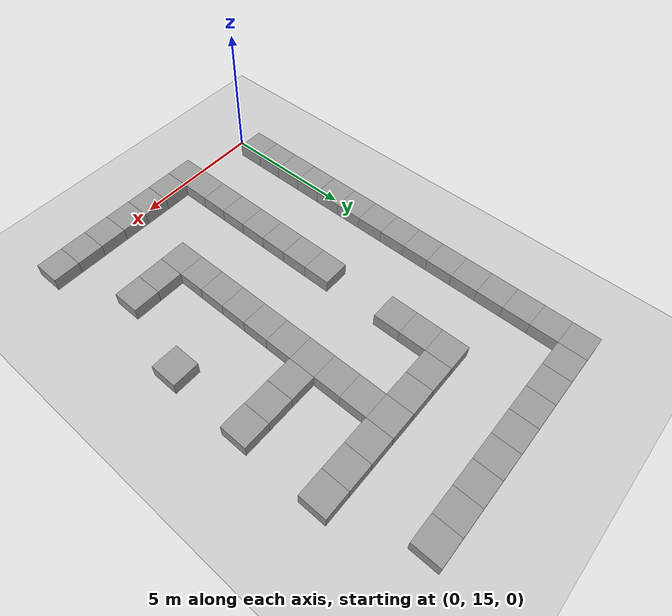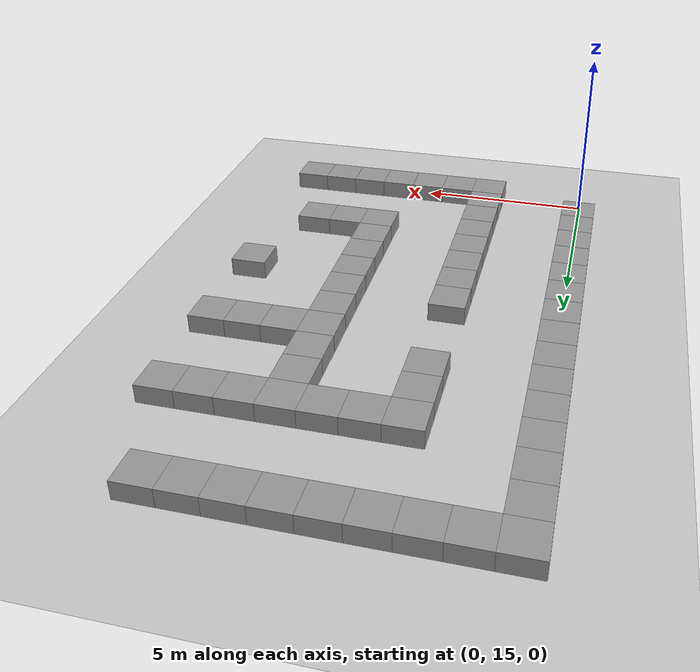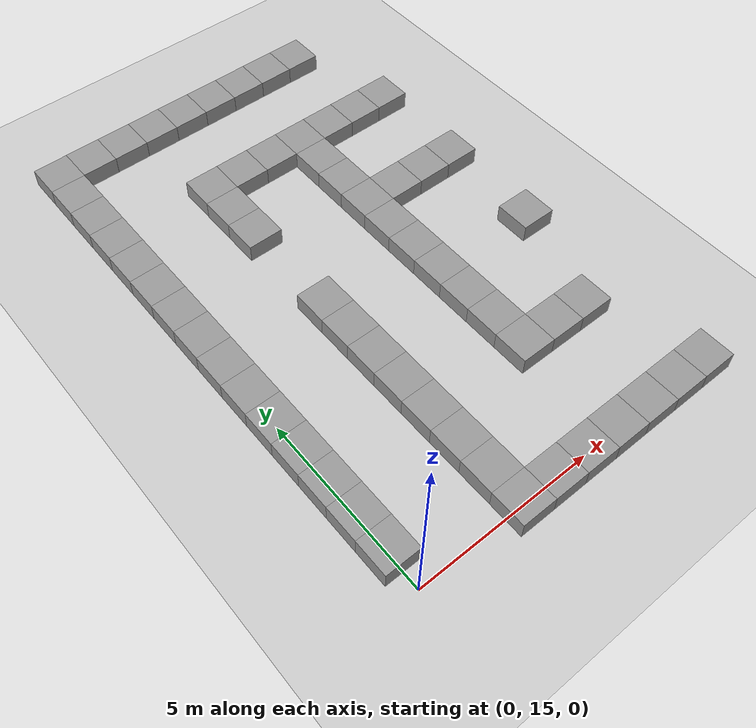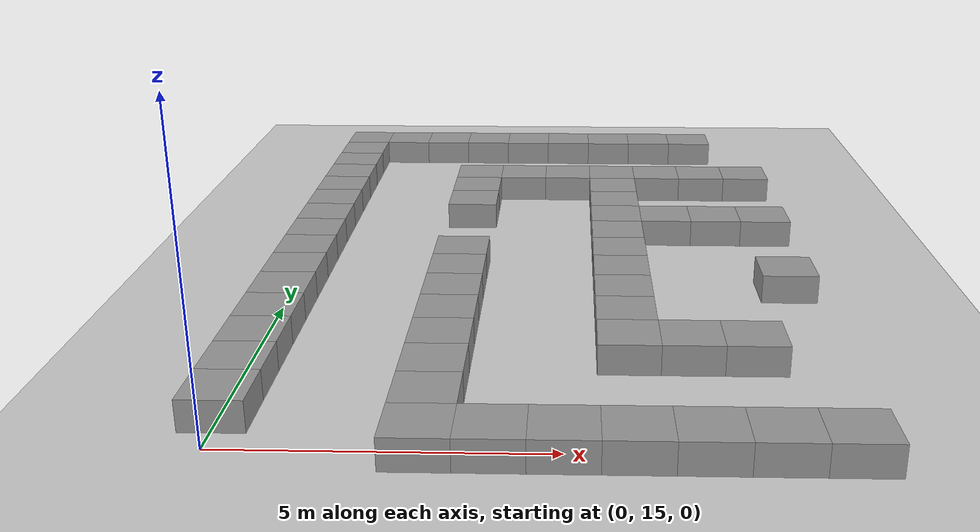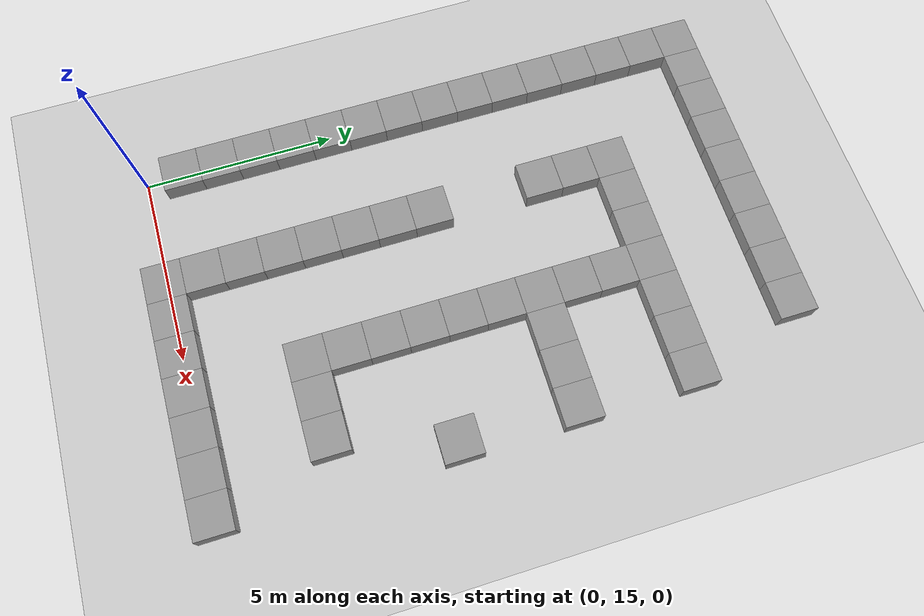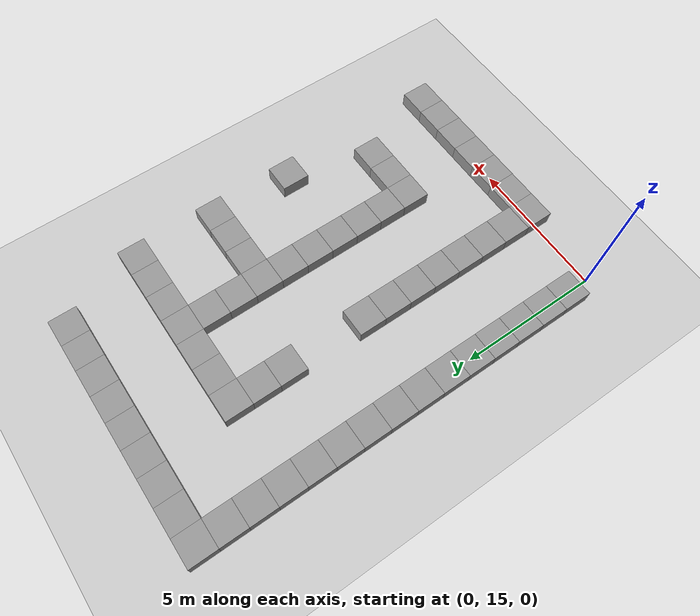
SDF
<sdf version="1.4">
 <world name="default">
  <model name="ground_plane">
   <static>1</static>
   <link name="link">
    <collision name="collision">
     <geometry><plane><normal>0 0 1</normal><size>100 100</size></plane></geometry>
     <surface><friction><ode><mu>100</mu><mu2>50</mu2></ode></friction></surface>
    </collision>
    <visual name="visual">
     <cast_shadows>0</cast_shadows>
     <geometry><plane><normal>0 0 1</normal><size>100 100</size></plane></geometry>
     <material>
      <script><uri>file://media/materials/scripts/gazebo.material</uri><name>Gazebo/Grey</name></script>
     </material>
    </visual>
    <velocity_decay><linear>0</linear><angular>0</angular></velocity_decay>
   </link>
  </model>
  <model name="unit_box_60">
   <pose>1 30 0 0 -0 0</pose>
   <link name="link">
    <inertial>
     <mass>1</mass>
     <inertia><ixx>1</ixx><ixy>0</ixy><ixz>0</ixz><iyy>1</iyy><iyz>0</iyz><izz>1</izz></inertia>
    </inertial>
    <collision name="collision"><geometry><box><size>1 1 1</size></box></geometry></collision>
    <visual name="visual">
     <geometry><box><size>1 1 1</size></box></geometry>
     <material>
      <script><uri>file://media/materials/scripts/gazebo.material</uri><name>Gazebo/Grey</name></script>
     </material>
    </visual>
    <velocity_decay><linear>0</linear><angular>0</angular></velocity_decay>
   </link>
   <static>1</static>
  </model>
  <model name="unit_box_61">
   <pose>2 30 0 0 -0 0</pose>
   <link name="link">
    <inertial>
     <mass>1</mass>
     <inertia><ixx>1</ixx><ixy>0</ixy><ixz>0</ixz><iyy>1</iyy><iyz>0</iyz><izz>1</izz></inertia>
    </inertial>
    <collision name="collision"><geometry><box><size>1 1 1</size></box></geometry></collision>
    <visual name="visual">
     <geometry><box><size>1 1 1</size></box></geometry>
     <material>
      <script><uri>file://media/materials/scripts/gazebo.material</uri><name>Gazebo/Grey</name></script>
     </material>
    </visual>
    <velocity_decay><linear>0</linear><angular>0</angular></velocity_decay>
   </link>
   <static>1</static>
  </model>
  <model name="unit_box_62">
   <pose>3 30 0 0 -0 0</pose>
   <link name="link">
    <inertial>
     <mass>1</mass>
     <inertia><ixx>1</ixx><ixy>0</ixy><ixz>0</ixz><iyy>1</iyy><iyz>0</iyz><izz>1</izz></inertia>
    </inertial>
    <collision name="collision"><geometry><box><size>1 1 1</size></box></geometry></collision>
    <visual name="visual">
     <geometry><box><size>1 1 1</size></box></geometry>
     <material>
      <script><uri>file://media/materials/scripts/gazebo.material</uri><name>Gazebo/Grey</name></script>
     </material>
    </visual>
    <velocity_decay><linear>0</linear><angular>0</angular></velocity_decay>
   </link>
   <static>1</static>
  </model>
  <model name="unit_box_63">
   <pose>4 30 0 0 -0 0</pose>
   <link name="link">
    <inertial>
     <mass>1</mass>
     <inertia><ixx>1</ixx><ixy>0</ixy><ixz>0</ixz><iyy>1</iyy><iyz>0</iyz><izz>1</izz></inertia>
    </inertial>
    <collision name="collision"><geometry><box><size>1 1 1</size></box></geometry></collision>
    <visual name="visual">
     <geometry><box><size>1 1 1</size></box></geometry>
     <material>
      <script><uri>file://media/materials/scripts/gazebo.material</uri><name>Gazebo/Grey</name></script>
     </material>
    </visual>
    <velocity_decay><linear>0</linear><angular>0</angular></velocity_decay>
   </link>
   <static>1</static>
  </model>
  <model name="unit_box_64">
   <pose>5 30 0 0 -0 0</pose>
   <link name="link">
    <inertial>
     <mass>1</mass>
     <inertia><ixx>1</ixx><ixy>0</ixy><ixz>0</ixz><iyy>1</iyy><iyz>0</iyz><izz>1</izz></inertia>
    </inertial>
    <collision name="collision"><geometry><box><size>1 1 1</size></box></geometry></collision>
    <visual name="visual">
     <geometry><box><size>1 1 1</size></box></geometry>
     <material>
      <script><uri>file://media/materials/scripts/gazebo.material</uri><name>Gazebo/Grey</name></script>
     </material>
    </visual>
    <velocity_decay><linear>0</linear><angular>0</angular></velocity_decay>
   </link>
   <static>1</static>
  </model>
  <model name="unit_box_65">
   <pose>6 30 0 0 -0 0</pose>
   <link name="link">
    <inertial>
     <mass>1</mass>
     <inertia><ixx>1</ixx><ixy>0</ixy><ixz>0</ixz><iyy>1</iyy><iyz>0</iyz><izz>1</izz></inertia>
    </inertial>
    <collision name="collision"><geometry><box><size>1 1 1</size></box></geometry></collision>
    <visual name="visual">
     <geometry><box><size>1 1 1</size></box></geometry>
     <material>
      <script><uri>file://media/materials/scripts/gazebo.material</uri><name>Gazebo/Grey</name></script>
     </material>
    </visual>
    <velocity_decay><linear>0</linear><angular>0</angular></velocity_decay>
   </link>
   <static>1</static>
  </model>
  <model name="unit_box_66">
   <pose>7 30 0 0 -0 0</pose>
   <link name="link">
    <inertial>
     <mass>1</mass>
     <inertia><ixx>1</ixx><ixy>0</ixy><ixz>0</ixz><iyy>1</iyy><iyz>0</iyz><izz>1</izz></inertia>
    </inertial>
    <collision name="collision"><geometry><box><size>1 1 1</size></box></geometry></collision>
    <visual name="visual">
     <geometry><box><size>1 1 1</size></box></geometry>
     <material>
      <script><uri>file://media/materials/scripts/gazebo.material</uri><name>Gazebo/Grey</name></script>
     </material>
    </visual>
    <velocity_decay><linear>0</linear><angular>0</angular></velocity_decay>
   </link>
   <static>1</static>
  </model>
  <model name="unit_box_67">
   <pose>8 30 0 0 -0 0</pose>
   <link name="link">
    <inertial>
     <mass>1</mass>
     <inertia><ixx>1</ixx><ixy>0</ixy><ixz>0</ixz><iyy>1</iyy><iyz>0</iyz><izz>1</izz></inertia>
    </inertial>
    <collision name="collision"><geometry><box><size>1 1 1</size></box></geometry></collision>
    <visual name="visual">
     <geometry><box><size>1 1 1</size></box></geometry>
     <material>
      <script><uri>file://media/materials/scripts/gazebo.material</uri><name>Gazebo/Grey</name></script>
     </material>
    </visual>
    <velocity_decay><linear>0</linear><angular>0</angular></velocity_decay>
   </link>
   <static>1</static>
  </model>
  <model name="unit_box_88">
   <pose>0 30 0 0 -0 0</pose>
   <link name="link">
    <inertial>
     <mass>1</mass>
     <inertia><ixx>1</ixx><ixy>0</ixy><ixz>0</ixz><iyy>1</iyy><iyz>0</iyz><izz>1</izz></inertia>
    </inertial>
    <collision name="collision"><geometry><box><size>1 1 1</size></box></geometry></collision>
    <visual name="visual">
     <geometry><box><size>1 1 1</size></box></geometry>
     <material>
      <script><uri>file://media/materials/scripts/gazebo.material</uri><name>Gazebo/Grey</name></script>
     </material>
    </visual>
    <velocity_decay><linear>0</linear><angular>0</angular></velocity_decay>
   </link>
   <static>1</static>
  </model>
  <model name="unit_box_89">
   <pose>0 29 0 0 -0 0</pose>
   <link name="link">
    <inertial>
     <mass>1</mass>
     <inertia><ixx>1</ixx><ixy>0</ixy><ixz>0</ixz><iyy>1</iyy><iyz>0</iyz><izz>1</izz></inertia>
    </inertial>
    <collision name="collision"><geometry><box><size>1 1 1</size></box></geometry></collision>
    <visual name="visual">
     <geometry><box><size>1 1 1</size></box></geometry>
     <material>
      <script><uri>file://media/materials/scripts/gazebo.material</uri><name>Gazebo/Grey</name></script>
     </material>
    </visual>
    <velocity_decay><linear>0</linear><angular>0</angular></velocity_decay>
   </link>
   <static>1</static>
  </model>
  <model name="unit_box_90">
   <pose>0 28 0 0 -0 0</pose>
   <link name="link">
    <inertial>
     <mass>1</mass>
     <inertia><ixx>1</ixx><ixy>0</ixy><ixz>0</ixz><iyy>1</iyy><iyz>0</iyz><izz>1</izz></inertia>
    </inertial>
    <collision name="collision"><geometry><box><size>1 1 1</size></box></geometry></collision>
    <visual name="visual">
     <geometry><box><size>1 1 1</size></box></geometry>
     <material>
      <script><uri>file://media/materials/scripts/gazebo.material</uri><name>Gazebo/Grey</name></script>
     </material>
    </visual>
    <velocity_decay><linear>0</linear><angular>0</angular></velocity_decay>
   </link>
   <static>1</static>
  </model>
  <model name="unit_box_91">
   <pose>0 27 0 0 -0 0</pose>
   <link name="link">
    <inertial>
     <mass>1</mass>
     <inertia><ixx>1</ixx><ixy>0</ixy><ixz>0</ixz><iyy>1</iyy><iyz>0</iyz><izz>1</izz></inertia>
    </inertial>
    <collision name="collision"><geometry><box><size>1 1 1</size></box></geometry></collision>
    <visual name="visual">
     <geometry><box><size>1 1 1</size></box></geometry>
     <material>
      <script><uri>file://media/materials/scripts/gazebo.material</uri><name>Gazebo/Grey</name></script>
     </material>
    </visual>
    <velocity_decay><linear>0</linear><angular>0</angular></velocity_decay>
   </link>
   <static>1</static>
  </model>
  <model name="unit_box_92">
   <pose>0 26 0 0 -0 0</pose>
   <link name="link">
    <inertial>
     <mass>1</mass>
     <inertia><ixx>1</ixx><ixy>0</ixy><ixz>0</ixz><iyy>1</iyy><iyz>0</iyz><izz>1</izz></inertia>
    </inertial>
    <collision name="collision"><geometry><box><size>1 1 1</size></box></geometry></collision>
    <visual name="visual">
     <geometry><box><size>1 1 1</size></box></geometry>
     <material>
      <script><uri>file://media/materials/scripts/gazebo.material</uri><name>Gazebo/Grey</name></script>
     </material>
    </visual>
    <velocity_decay><linear>0</linear><angular>0</angular></velocity_decay>
   </link>
   <static>1</static>
  </model>
  <model name="unit_box_93">
   <pose>0 25 0 0 -0 0</pose>
   <link name="link">
    <inertial>
     <mass>1</mass>
     <inertia><ixx>1</ixx><ixy>0</ixy><ixz>0</ixz><iyy>1</iyy><iyz>0</iyz><izz>1</izz></inertia>
    </inertial>
    <collision name="collision"><geometry><box><size>1 1 1</size></box></geometry></collision>
    <visual name="visual">
     <geometry><box><size>1 1 1</size></box></geometry>
     <material>
      <script><uri>file://media/materials/scripts/gazebo.material</uri><name>Gazebo/Grey</name></script>
     </material>
    </visual>
    <velocity_decay><linear>0</linear><angular>0</angular></velocity_decay>
   </link>
   <static>1</static>
  </model>
  <model name="unit_box_94">
   <pose>0 24 0 0 -0 0</pose>
   <link name="link">
    <inertial>
     <mass>1</mass>
     <inertia><ixx>1</ixx><ixy>0</ixy><ixz>0</ixz><iyy>1</iyy><iyz>0</iyz><izz>1</izz></inertia>
    </inertial>
    <collision name="collision"><geometry><box><size>1 1 1</size></box></geometry></collision>
    <visual name="visual">
     <geometry><box><size>1 1 1</size></box></geometry>
     <material>
      <script><uri>file://media/materials/scripts/gazebo.material</uri><name>Gazebo/Grey</name></script>
     </material>
    </visual>
    <velocity_decay><linear>0</linear><angular>0</angular></velocity_decay>
   </link>
   <static>1</static>
  </model>
  <model name="unit_box_95">
   <pose>0 23 0 0 -0 0</pose>
   <link name="link">
    <inertial>
     <mass>1</mass>
     <inertia><ixx>1</ixx><ixy>0</ixy><ixz>0</ixz><iyy>1</iyy><iyz>0</iyz><izz>1</izz></inertia>
    </inertial>
    <collision name="collision"><geometry><box><size>1 1 1</size></box></geometry></collision>
    <visual name="visual">
     <geometry><box><size>1 1 1</size></box></geometry>
     <material>
      <script><uri>file://media/materials/scripts/gazebo.material</uri><name>Gazebo/Grey</name></script>
     </material>
    </visual>
    <velocity_decay><linear>0</linear><angular>0</angular></velocity_decay>
   </link>
   <static>1</static>
  </model>
  <model name="unit_box_96">
   <pose>0 22 0 0 -0 0</pose>
   <link name="link">
    <inertial>
     <mass>1</mass>
     <inertia><ixx>1</ixx><ixy>0</ixy><ixz>0</ixz><iyy>1</iyy><iyz>0</iyz><izz>1</izz></inertia>
    </inertial>
    <collision name="collision"><geometry><box><size>1 1 1</size></box></geometry></collision>
    <visual name="visual">
     <geometry><box><size>1 1 1</size></box></geometry>
     <material>
      <script><uri>file://media/materials/scripts/gazebo.material</uri><name>Gazebo/Grey</name></script>
     </material>
    </visual>
    <velocity_decay><linear>0</linear><angular>0</angular></velocity_decay>
   </link>
   <static>1</static>
  </model>
  <model name="unit_box_97">
   <pose>0 21 0 0 -0 0</pose>
   <link name="link">
    <inertial>
     <mass>1</mass>
     <inertia><ixx>1</ixx><ixy>0</ixy><ixz>0</ixz><iyy>1</iyy><iyz>0</iyz><izz>1</izz></inertia>
    </inertial>
    <collision name="collision"><geometry><box><size>1 1 1</size></box></geometry></collision>
    <visual name="visual">
     <geometry><box><size>1 1 1</size></box></geometry>
     <material>
      <script><uri>file://media/materials/scripts/gazebo.material</uri><name>Gazebo/Grey</name></script>
     </material>
    </visual>
    <velocity_decay><linear>0</linear><angular>0</angular></velocity_decay>
   </link>
   <static>1</static>
  </model>
  <model name="unit_box_98">
   <pose>0 20 0 0 -0 0</pose>
   <link name="link">
    <inertial>
     <mass>1</mass>
     <inertia><ixx>1</ixx><ixy>0</ixy><ixz>0</ixz><iyy>1</iyy><iyz>0</iyz><izz>1</izz></inertia>
    </inertial>
    <collision name="collision"><geometry><box><size>1 1 1</size></box></geometry></collision>
    <visual name="visual">
     <geometry><box><size>1 1 1</size></box></geometry>
     <material>
      <script><uri>file://media/materials/scripts/gazebo.material</uri><name>Gazebo/Grey</name></script>
     </material>
    </visual>
    <velocity_decay><linear>0</linear><angular>0</angular></velocity_decay>
   </link>
   <static>1</static>
  </model>
  <model name="unit_box_99">
   <pose>0 19 0 0 -0 0</pose>
   <link name="link">
    <inertial>
     <mass>1</mass>
     <inertia><ixx>1</ixx><ixy>0</ixy><ixz>0</ixz><iyy>1</iyy><iyz>0</iyz><izz>1</izz></inertia>
    </inertial>
    <collision name="collision"><geometry><box><size>1 1 1</size></box></geometry></collision>
    <visual name="visual">
     <geometry><box><size>1 1 1</size></box></geometry>
     <material>
      <script><uri>file://media/materials/scripts/gazebo.material</uri><name>Gazebo/Grey</name></script>
     </material>
    </visual>
    <velocity_decay><linear>0</linear><angular>0</angular></velocity_decay>
   </link>
   <static>1</static>
  </model>
  <model name="unit_box_100">
   <pose>0 18 0 0 -0 0</pose>
   <link name="link">
    <inertial>
     <mass>1</mass>
     <inertia><ixx>1</ixx><ixy>0</ixy><ixz>0</ixz><iyy>1</iyy><iyz>0</iyz><izz>1</izz></inertia>
    </inertial>
    <collision name="collision"><geometry><box><size>1 1 1</size></box></geometry></collision>
    <visual name="visual">
     <geometry><box><size>1 1 1</size></box></geometry>
     <material>
      <script><uri>file://media/materials/scripts/gazebo.material</uri><name>Gazebo/Grey</name></script>
     </material>
    </visual>
    <velocity_decay><linear>0</linear><angular>0</angular></velocity_decay>
   </link>
   <static>1</static>
  </model>
  <model name="unit_box_101">
   <pose>0 17 0 0 -0 0</pose>
   <link name="link">
    <inertial>
     <mass>1</mass>
     <inertia><ixx>1</ixx><ixy>0</ixy><ixz>0</ixz><iyy>1</iyy><iyz>0</iyz><izz>1</izz></inertia>
    </inertial>
    <collision name="collision"><geometry><box><size>1 1 1</size></box></geometry></collision>
    <visual name="visual">
     <geometry><box><size>1 1 1</size></box></geometry>
     <material>
      <script><uri>file://media/materials/scripts/gazebo.material</uri><name>Gazebo/Grey</name></script>
     </material>
    </visual>
    <velocity_decay><linear>0</linear><angular>0</angular></velocity_decay>
   </link>
   <static>1</static>
  </model>
  <model name="unit_box_102">
   <pose>0 16 0 0 -0 0</pose>
   <link name="link">
    <inertial>
     <mass>1</mass>
     <inertia><ixx>1</ixx><ixy>0</ixy><ixz>0</ixz><iyy>1</iyy><iyz>0</iyz><izz>1</izz></inertia>
    </inertial>
    <collision name="collision"><geometry><box><size>1 1 1</size></box></geometry></collision>
    <visual name="visual">
     <geometry><box><size>1 1 1</size></box></geometry>
     <material>
      <script><uri>file://media/materials/scripts/gazebo.material</uri><name>Gazebo/Grey</name></script>
     </material>
    </visual>
    <velocity_decay><linear>0</linear><angular>0</angular></velocity_decay>
   </link>
   <static>1</static>
  </model>
  <model name="unit_box_242">
   <pose>3 15 0 0 -0 0</pose>
   <link name="link">
    <inertial>
     <mass>1</mass>
     <inertia><ixx>1</ixx><ixy>0</ixy><ixz>0</ixz><iyy>1</iyy><iyz>0</iyz><izz>1</izz></inertia>
    </inertial>
    <collision name="collision"><geometry><box><size>1 1 1</size></box></geometry></collision>
    <visual name="visual">
     <geometry><box><size>1 1 1</size></box></geometry>
     <material>
      <script><uri>file://media/materials/scripts/gazebo.material</uri><name>Gazebo/Grey</name></script>
     </material>
    </visual>
    <velocity_decay><linear>0</linear><angular>0</angular></velocity_decay>
   </link>
   <static>1</static>
  </model>
  <model name="unit_box_243">
   <pose>4 15 0 0 -0 0</pose>
   <link name="link">
    <inertial>
     <mass>1</mass>
     <inertia><ixx>1</ixx><ixy>0</ixy><ixz>0</ixz><iyy>1</iyy><iyz>0</iyz><izz>1</izz></inertia>
    </inertial>
    <collision name="collision"><geometry><box><size>1 1 1</size></box></geometry></collision>
    <visual name="visual">
     <geometry><box><size>1 1 1</size></box></geometry>
     <material>
      <script><uri>file://media/materials/scripts/gazebo.material</uri><name>Gazebo/Grey</name></script>
     </material>
    </visual>
    <velocity_decay><linear>0</linear><angular>0</angular></velocity_decay>
   </link>
   <static>1</static>
  </model>
  <model name="unit_box_244">
   <pose>5 15 0 0 -0 0</pose>
   <link name="link">
    <inertial>
     <mass>1</mass>
     <inertia><ixx>1</ixx><ixy>0</ixy><ixz>0</ixz><iyy>1</iyy><iyz>0</iyz><izz>1</izz></inertia>
    </inertial>
    <collision name="collision"><geometry><box><size>1 1 1</size></box></geometry></collision>
    <visual name="visual">
     <geometry><box><size>1 1 1</size></box></geometry>
     <material>
      <script><uri>file://media/materials/scripts/gazebo.material</uri><name>Gazebo/Grey</name></script>
     </material>
    </visual>
    <velocity_decay><linear>0</linear><angular>0</angular></velocity_decay>
   </link>
   <static>1</static>
  </model>
  <model name="unit_box_245">
   <pose>6 15 0 0 -0 0</pose>
   <link name="link">
    <inertial>
     <mass>1</mass>
     <inertia><ixx>1</ixx><ixy>0</ixy><ixz>0</ixz><iyy>1</iyy><iyz>0</iyz><izz>1</izz></inertia>
    </inertial>
    <collision name="collision"><geometry><box><size>1 1 1</size></box></geometry></collision>
    <visual name="visual">
     <geometry><box><size>1 1 1</size></box></geometry>
     <material>
      <script><uri>file://media/materials/scripts/gazebo.material</uri><name>Gazebo/Grey</name></script>
     </material>
    </visual>
    <velocity_decay><linear>0</linear><angular>0</angular></velocity_decay>
   </link>
   <static>1</static>
  </model>
  <model name="unit_box_246">
   <pose>7 15 0 0 -0 0</pose>
   <link name="link">
    <inertial>
     <mass>1</mass>
     <inertia><ixx>1</ixx><ixy>0</ixy><ixz>0</ixz><iyy>1</iyy><iyz>0</iyz><izz>1</izz></inertia>
    </inertial>
    <collision name="collision"><geometry><box><size>1 1 1</size></box></geometry></collision>
    <visual name="visual">
     <geometry><box><size>1 1 1</size></box></geometry>
     <material>
      <script><uri>file://media/materials/scripts/gazebo.material</uri><name>Gazebo/Grey</name></script>
     </material>
    </visual>
    <velocity_decay><linear>0</linear><angular>0</angular></velocity_decay>
   </link>
   <static>1</static>
  </model>
  <model name="unit_box_247">
   <pose>8 15 0 0 -0 0</pose>
   <link name="link">
    <inertial>
     <mass>1</mass>
     <inertia><ixx>1</ixx><ixy>0</ixy><ixz>0</ixz><iyy>1</iyy><iyz>0</iyz><izz>1</izz></inertia>
    </inertial>
    <collision name="collision"><geometry><box><size>1 1 1</size></box></geometry></collision>
    <visual name="visual">
     <geometry><box><size>1 1 1</size></box></geometry>
     <material>
      <script><uri>file://media/materials/scripts/gazebo.material</uri><name>Gazebo/Grey</name></script>
     </material>
    </visual>
    <velocity_decay><linear>0</linear><angular>0</angular></velocity_decay>
   </link>
   <static>1</static>
  </model>
  <model name="unit_box_248">
   <pose>9 15 0 0 -0 0</pose>
   <link name="link">
    <inertial>
     <mass>1</mass>
     <inertia><ixx>1</ixx><ixy>0</ixy><ixz>0</ixz><iyy>1</iyy><iyz>0</iyz><izz>1</izz></inertia>
    </inertial>
    <collision name="collision"><geometry><box><size>1 1 1</size></box></geometry></collision>
    <visual name="visual">
     <geometry><box><size>1 1 1</size></box></geometry>
     <material>
      <script><uri>file://media/materials/scripts/gazebo.material</uri><name>Gazebo/Grey</name></script>
     </material>
    </visual>
    <velocity_decay><linear>0</linear><angular>0</angular></velocity_decay>
   </link>
   <static>1</static>
  </model>
  <model name="unit_box_272">
   <pose>8 18 0 0 -0 0</pose>
   <link name="link">
    <inertial>
     <mass>1</mass>
     <inertia><ixx>1</ixx><ixy>0</ixy><ixz>0</ixz><iyy>1</iyy><iyz>0</iyz><izz>1</izz></inertia>
    </inertial>
    <collision name="collision"><geometry><box><size>1 1 1</size></box></geometry></collision>
    <visual name="visual">
     <geometry><box><size>1 1 1</size></box></geometry>
     <material>
      <script><uri>file://media/materials/scripts/gazebo.material</uri><name>Gazebo/Grey</name></script>
     </material>
    </visual>
    <velocity_decay><linear>0</linear><angular>0</angular></velocity_decay>
   </link>
   <static>1</static>
  </model>
  <model name="unit_box_273">
   <pose>7 18 0 0 -0 0</pose>
   <link name="link">
    <inertial>
     <mass>1</mass>
     <inertia><ixx>1</ixx><ixy>0</ixy><ixz>0</ixz><iyy>1</iyy><iyz>0</iyz><izz>1</izz></inertia>
    </inertial>
    <collision name="collision"><geometry><box><size>1 1 1</size></box></geometry></collision>
    <visual name="visual">
     <geometry><box><size>1 1 1</size></box></geometry>
     <material>
      <script><uri>file://media/materials/scripts/gazebo.material</uri><name>Gazebo/Grey</name></script>
     </material>
    </visual>
    <velocity_decay><linear>0</linear><angular>0</angular></velocity_decay>
   </link>
   <static>1</static>
  </model>
  <model name="unit_box_274">
   <pose>6 18 0 0 -0 0</pose>
   <link name="link">
    <inertial>
     <mass>1</mass>
     <inertia><ixx>1</ixx><ixy>0</ixy><ixz>0</ixz><iyy>1</iyy><iyz>0</iyz><izz>1</izz></inertia>
    </inertial>
    <collision name="collision"><geometry><box><size>1 1 1</size></box></geometry></collision>
    <visual name="visual">
     <geometry><box><size>1 1 1</size></box></geometry>
     <material>
      <script><uri>file://media/materials/scripts/gazebo.material</uri><name>Gazebo/Grey</name></script>
     </material>
    </visual>
    <velocity_decay><linear>0</linear><angular>0</angular></velocity_decay>
   </link>
   <static>1</static>
  </model>
  <model name="unit_box_275">
   <pose>3 18 0 0 -0 0</pose>
   <link name="link">
    <inertial>
     <mass>1</mass>
     <inertia><ixx>1</ixx><ixy>0</ixy><ixz>0</ixz><iyy>1</iyy><iyz>0</iyz><izz>1</izz></inertia>
    </inertial>
    <collision name="collision"><geometry><box><size>1 1 1</size></box></geometry></collision>
    <visual name="visual">
     <geometry><box><size>1 1 1</size></box></geometry>
     <material>
      <script><uri>file://media/materials/scripts/gazebo.material</uri><name>Gazebo/Grey</name></script>
     </material>
    </visual>
    <velocity_decay><linear>0</linear><angular>0</angular></velocity_decay>
   </link>
   <static>1</static>
  </model>
  <model name="unit_box_276">
   <pose>3 17 0 0 -0 0</pose>
   <link name="link">
    <inertial>
     <mass>1</mass>
     <inertia><ixx>1</ixx><ixy>0</ixy><ixz>0</ixz><iyy>1</iyy><iyz>0</iyz><izz>1</izz></inertia>
    </inertial>
    <collision name="collision"><geometry><box><size>1 1 1</size></box></geometry></collision>
    <visual name="visual">
     <geometry><box><size>1 1 1</size></box></geometry>
     <material>
      <script><uri>file://media/materials/scripts/gazebo.material</uri><name>Gazebo/Grey</name></script>
     </material>
    </visual>
    <velocity_decay><linear>0</linear><angular>0</angular></velocity_decay>
   </link>
   <static>1</static>
  </model>
  <model name="unit_box_277">
   <pose>3 16 0 0 -0 0</pose>
   <link name="link">
    <inertial>
     <mass>1</mass>
     <inertia><ixx>1</ixx><ixy>0</ixy><ixz>0</ixz><iyy>1</iyy><iyz>0</iyz><izz>1</izz></inertia>
    </inertial>
    <collision name="collision"><geometry><box><size>1 1 1</size></box></geometry></collision>
    <visual name="visual">
     <geometry><box><size>1 1 1</size></box></geometry>
     <material>
      <script><uri>file://media/materials/scripts/gazebo.material</uri><name>Gazebo/Grey</name></script>
     </material>
    </visual>
    <velocity_decay><linear>0</linear><angular>0</angular></velocity_decay>
   </link>
   <static>1</static>
  </model>
  <model name="unit_box_278">
   <pose>3 19 0 0 -0 0</pose>
   <link name="link">
    <inertial>
     <mass>1</mass>
     <inertia><ixx>1</ixx><ixy>0</ixy><ixz>0</ixz><iyy>1</iyy><iyz>0</iyz><izz>1</izz></inertia>
    </inertial>
    <collision name="collision"><geometry><box><size>1 1 1</size></box></geometry></collision>
    <visual name="visual">
     <geometry><box><size>1 1 1</size></box></geometry>
     <material>
      <script><uri>file://media/materials/scripts/gazebo.material</uri><name>Gazebo/Grey</name></script>
     </material>
    </visual>
    <velocity_decay><linear>0</linear><angular>0</angular></velocity_decay>
   </link>
   <static>1</static>
  </model>
  <model name="unit_box_279">
   <pose>3 20 0 0 -0 0</pose>
   <link name="link">
    <inertial>
     <mass>1</mass>
     <inertia><ixx>1</ixx><ixy>0</ixy><ixz>0</ixz><iyy>1</iyy><iyz>0</iyz><izz>1</izz></inertia>
    </inertial>
    <collision name="collision"><geometry><box><size>1 1 1</size></box></geometry></collision>
    <visual name="visual">
     <geometry><box><size>1 1 1</size></box></geometry>
     <material>
      <script><uri>file://media/materials/scripts/gazebo.material</uri><name>Gazebo/Grey</name></script>
     </material>
    </visual>
    <velocity_decay><linear>0</linear><angular>0</angular></velocity_decay>
   </link>
   <static>1</static>
  </model>
  <model name="unit_box_280">
   <pose>3 21 0 0 -0 0</pose>
   <link name="link">
    <inertial>
     <mass>1</mass>
     <inertia><ixx>1</ixx><ixy>0</ixy><ixz>0</ixz><iyy>1</iyy><iyz>0</iyz><izz>1</izz></inertia>
    </inertial>
    <collision name="collision"><geometry><box><size>1 1 1</size></box></geometry></collision>
    <visual name="visual">
     <geometry><box><size>1 1 1</size></box></geometry>
     <material>
      <script><uri>file://media/materials/scripts/gazebo.material</uri><name>Gazebo/Grey</name></script>
     </material>
    </visual>
    <velocity_decay><linear>0</linear><angular>0</angular></velocity_decay>
   </link>
   <static>1</static>
  </model>
  <model name="unit_box_281">
   <pose>3 22 0 0 -0 0</pose>
   <link name="link">
    <inertial>
     <mass>1</mass>
     <inertia><ixx>1</ixx><ixy>0</ixy><ixz>0</ixz><iyy>1</iyy><iyz>0</iyz><izz>1</izz></inertia>
    </inertial>
    <collision name="collision"><geometry><box><size>1 1 1</size></box></geometry></collision>
    <visual name="visual">
     <geometry><box><size>1 1 1</size></box></geometry>
     <material>
      <script><uri>file://media/materials/scripts/gazebo.material</uri><name>Gazebo/Grey</name></script>
     </material>
    </visual>
    <velocity_decay><linear>0</linear><angular>0</angular></velocity_decay>
   </link>
   <static>1</static>
  </model>
  <model name="unit_box_282">
   <pose>3 25 0 0 -0 0</pose>
   <link name="link">
    <inertial>
     <mass>1</mass>
     <inertia><ixx>1</ixx><ixy>0</ixy><ixz>0</ixz><iyy>1</iyy><iyz>0</iyz><izz>1</izz></inertia>
    </inertial>
    <collision name="collision"><geometry><box><size>1 1 1</size></box></geometry></collision>
    <visual name="visual">
     <geometry><box><size>1 1 1</size></box></geometry>
     <material>
      <script><uri>file://media/materials/scripts/gazebo.material</uri><name>Gazebo/Grey</name></script>
     </material>
    </visual>
    <velocity_decay><linear>0</linear><angular>0</angular></velocity_decay>
   </link>
   <static>1</static>
  </model>
  <model name="unit_box_283">
   <pose>3 26 0 0 -0 0</pose>
   <link name="link">
    <inertial>
     <mass>1</mass>
     <inertia><ixx>1</ixx><ixy>0</ixy><ixz>0</ixz><iyy>1</iyy><iyz>0</iyz><izz>1</izz></inertia>
    </inertial>
    <collision name="collision"><geometry><box><size>1 1 1</size></box></geometry></collision>
    <visual name="visual">
     <geometry><box><size>1 1 1</size></box></geometry>
     <material>
      <script><uri>file://media/materials/scripts/gazebo.material</uri><name>Gazebo/Grey</name></script>
     </material>
    </visual>
    <velocity_decay><linear>0</linear><angular>0</angular></velocity_decay>
   </link>
   <static>1</static>
  </model>
  <model name="unit_box_284">
   <pose>3 27 0 0 -0 0</pose>
   <link name="link">
    <inertial>
     <mass>1</mass>
     <inertia><ixx>1</ixx><ixy>0</ixy><ixz>0</ixz><iyy>1</iyy><iyz>0</iyz><izz>1</izz></inertia>
    </inertial>
    <collision name="collision"><geometry><box><size>1 1 1</size></box></geometry></collision>
    <visual name="visual">
     <geometry><box><size>1 1 1</size></box></geometry>
     <material>
      <script><uri>file://media/materials/scripts/gazebo.material</uri><name>Gazebo/Grey</name></script>
     </material>
    </visual>
    <velocity_decay><linear>0</linear><angular>0</angular></velocity_decay>
   </link>
   <static>1</static>
  </model>
  <model name="unit_box_285">
   <pose>6 19 0 0 -0 0</pose>
   <link name="link">
    <inertial>
     <mass>1</mass>
     <inertia><ixx>1</ixx><ixy>0</ixy><ixz>0</ixz><iyy>1</iyy><iyz>0</iyz><izz>1</izz></inertia>
    </inertial>
    <collision name="collision"><geometry><box><size>1 1 1</size></box></geometry></collision>
    <visual name="visual">
     <geometry><box><size>1 1 1</size></box></geometry>
     <material>
      <script><uri>file://media/materials/scripts/gazebo.material</uri><name>Gazebo/Grey</name></script>
     </material>
    </visual>
    <velocity_decay><linear>0</linear><angular>0</angular></velocity_decay>
   </link>
   <static>1</static>
  </model>
  <model name="unit_box_286">
   <pose>6 20 0 0 -0 0</pose>
   <link name="link">
    <inertial>
     <mass>1</mass>
     <inertia><ixx>1</ixx><ixy>0</ixy><ixz>0</ixz><iyy>1</iyy><iyz>0</iyz><izz>1</izz></inertia>
    </inertial>
    <collision name="collision"><geometry><box><size>1 1 1</size></box></geometry></collision>
    <visual name="visual">
     <geometry><box><size>1 1 1</size></box></geometry>
     <material>
      <script><uri>file://media/materials/scripts/gazebo.material</uri><name>Gazebo/Grey</name></script>
     </material>
    </visual>
    <velocity_decay><linear>0</linear><angular>0</angular></velocity_decay>
   </link>
   <static>1</static>
  </model>
  <model name="unit_box_287">
   <pose>6 21 0 0 -0 0</pose>
   <link name="link">
    <inertial>
     <mass>1</mass>
     <inertia><ixx>1</ixx><ixy>0</ixy><ixz>0</ixz><iyy>1</iyy><iyz>0</iyz><izz>1</izz></inertia>
    </inertial>
    <collision name="collision"><geometry><box><size>1 1 1</size></box></geometry></collision>
    <visual name="visual">
     <geometry><box><size>1 1 1</size></box></geometry>
     <material>
      <script><uri>file://media/materials/scripts/gazebo.material</uri><name>Gazebo/Grey</name></script>
     </material>
    </visual>
    <velocity_decay><linear>0</linear><angular>0</angular></velocity_decay>
   </link>
   <static>1</static>
  </model>
  <model name="unit_box_288">
   <pose>6 22 0 0 -0 0</pose>
   <link name="link">
    <inertial>
     <mass>1</mass>
     <inertia><ixx>1</ixx><ixy>0</ixy><ixz>0</ixz><iyy>1</iyy><iyz>0</iyz><izz>1</izz></inertia>
    </inertial>
    <collision name="collision"><geometry><box><size>1 1 1</size></box></geometry></collision>
    <visual name="visual">
     <geometry><box><size>1 1 1</size></box></geometry>
     <material>
      <script><uri>file://media/materials/scripts/gazebo.material</uri><name>Gazebo/Grey</name></script>
     </material>
    </visual>
    <velocity_decay><linear>0</linear><angular>0</angular></velocity_decay>
   </link>
   <static>1</static>
  </model>
  <model name="unit_box_289">
   <pose>6 23 0 0 -0 0</pose>
   <link name="link">
    <inertial>
     <mass>1</mass>
     <inertia><ixx>1</ixx><ixy>0</ixy><ixz>0</ixz><iyy>1</iyy><iyz>0</iyz><izz>1</izz></inertia>
    </inertial>
    <collision name="collision"><geometry><box><size>1 1 1</size></box></geometry></collision>
    <visual name="visual">
     <geometry><box><size>1 1 1</size></box></geometry>
     <material>
      <script><uri>file://media/materials/scripts/gazebo.material</uri><name>Gazebo/Grey</name></script>
     </material>
    </visual>
    <velocity_decay><linear>0</linear><angular>0</angular></velocity_decay>
   </link>
   <static>1</static>
  </model>
  <model name="unit_box_290">
   <pose>6 24 0 0 -0 0</pose>
   <link name="link">
    <inertial>
     <mass>1</mass>
     <inertia><ixx>1</ixx><ixy>0</ixy><ixz>0</ixz><iyy>1</iyy><iyz>0</iyz><izz>1</izz></inertia>
    </inertial>
    <collision name="collision"><geometry><box><size>1 1 1</size></box></geometry></collision>
    <visual name="visual">
     <geometry><box><size>1 1 1</size></box></geometry>
     <material>
      <script><uri>file://media/materials/scripts/gazebo.material</uri><name>Gazebo/Grey</name></script>
     </material>
    </visual>
    <velocity_decay><linear>0</linear><angular>0</angular></velocity_decay>
   </link>
   <static>1</static>
  </model>
  <model name="unit_box_291">
   <pose>6 25 0 0 -0 0</pose>
   <link name="link">
    <inertial>
     <mass>1</mass>
     <inertia><ixx>1</ixx><ixy>0</ixy><ixz>0</ixz><iyy>1</iyy><iyz>0</iyz><izz>1</izz></inertia>
    </inertial>
    <collision name="collision"><geometry><box><size>1 1 1</size></box></geometry></collision>
    <visual name="visual">
     <geometry><box><size>1 1 1</size></box></geometry>
     <material>
      <script><uri>file://media/materials/scripts/gazebo.material</uri><name>Gazebo/Grey</name></script>
     </material>
    </visual>
    <velocity_decay><linear>0</linear><angular>0</angular></velocity_decay>
   </link>
   <static>1</static>
  </model>
  <model name="unit_box_292">
   <pose>6 26 0 0 -0 0</pose>
   <link name="link">
    <inertial>
     <mass>1</mass>
     <inertia><ixx>1</ixx><ixy>0</ixy><ixz>0</ixz><iyy>1</iyy><iyz>0</iyz><izz>1</izz></inertia>
    </inertial>
    <collision name="collision"><geometry><box><size>1 1 1</size></box></geometry></collision>
    <visual name="visual">
     <geometry><box><size>1 1 1</size></box></geometry>
     <material>
      <script><uri>file://media/materials/scripts/gazebo.material</uri><name>Gazebo/Grey</name></script>
     </material>
    </visual>
    <velocity_decay><linear>0</linear><angular>0</angular></velocity_decay>
   </link>
   <static>1</static>
  </model>
  <model name="unit_box_293">
   <pose>6 27 0 0 -0 0</pose>
   <link name="link">
    <inertial>
     <mass>1</mass>
     <inertia><ixx>1</ixx><ixy>0</ixy><ixz>0</ixz><iyy>1</iyy><iyz>0</iyz><izz>1</izz></inertia>
    </inertial>
    <collision name="collision"><geometry><box><size>1 1 1</size></box></geometry></collision>
    <visual name="visual">
     <geometry><box><size>1 1 1</size></box></geometry>
     <material>
      <script><uri>file://media/materials/scripts/gazebo.material</uri><name>Gazebo/Grey</name></script>
     </material>
    </visual>
    <velocity_decay><linear>0</linear><angular>0</angular></velocity_decay>
   </link>
   <static>1</static>
  </model>
  <model name="unit_box_294">
   <pose>4 27 0 0 -0 0</pose>
   <link name="link">
    <inertial>
     <mass>1</mass>
     <inertia><ixx>1</ixx><ixy>0</ixy><ixz>0</ixz><iyy>1</iyy><iyz>0</iyz><izz>1</izz></inertia>
    </inertial>
    <collision name="collision"><geometry><box><size>1 1 1</size></box></geometry></collision>
    <visual name="visual">
     <geometry><box><size>1 1 1</size></box></geometry>
     <material>
      <script><uri>file://media/materials/scripts/gazebo.material</uri><name>Gazebo/Grey</name></script>
     </material>
    </visual>
    <velocity_decay><linear>0</linear><angular>0</angular></velocity_decay>
   </link>
   <static>1</static>
  </model>
  <model name="unit_box_295">
   <pose>5 27 0 0 -0 0</pose>
   <link name="link">
    <inertial>
     <mass>1</mass>
     <inertia><ixx>1</ixx><ixy>0</ixy><ixz>0</ixz><iyy>1</iyy><iyz>0</iyz><izz>1</izz></inertia>
    </inertial>
    <collision name="collision"><geometry><box><size>1 1 1</size></box></geometry></collision>
    <visual name="visual">
     <geometry><box><size>1 1 1</size></box></geometry>
     <material>
      <script><uri>file://media/materials/scripts/gazebo.material</uri><name>Gazebo/Grey</name></script>
     </material>
    </visual>
    <velocity_decay><linear>0</linear><angular>0</angular></velocity_decay>
   </link>
   <static>1</static>
  </model>
  <model name="unit_box_296">
   <pose>7 27 0 0 -0 0</pose>
   <link name="link">
    <inertial>
     <mass>1</mass>
     <inertia><ixx>1</ixx><ixy>0</ixy><ixz>0</ixz><iyy>1</iyy><iyz>0</iyz><izz>1</izz></inertia>
    </inertial>
    <collision name="collision"><geometry><box><size>1 1 1</size></box></geometry></collision>
    <visual name="visual">
     <geometry><box><size>1 1 1</size></box></geometry>
     <material>
      <script><uri>file://media/materials/scripts/gazebo.material</uri><name>Gazebo/Grey</name></script>
     </material>
    </visual>
    <velocity_decay><linear>0</linear><angular>0</angular></velocity_decay>
   </link>
   <static>1</static>
  </model>
  <model name="unit_box_297">
   <pose>8 27 0 0 -0 0</pose>
   <link name="link">
    <inertial>
     <mass>1</mass>
     <inertia><ixx>1</ixx><ixy>0</ixy><ixz>0</ixz><iyy>1</iyy><iyz>0</iyz><izz>1</izz></inertia>
    </inertial>
    <collision name="collision"><geometry><box><size>1 1 1</size></box></geometry></collision>
    <visual name="visual">
     <geometry><box><size>1 1 1</size></box></geometry>
     <material>
      <script><uri>file://media/materials/scripts/gazebo.material</uri><name>Gazebo/Grey</name></script>
     </material>
    </visual>
    <velocity_decay><linear>0</linear><angular>0</angular></velocity_decay>
   </link>
   <static>1</static>
  </model>
  <model name="unit_box_298">
   <pose>9 27 0 0 -0 0</pose>
   <link name="link">
    <inertial>
     <mass>1</mass>
     <inertia><ixx>1</ixx><ixy>0</ixy><ixz>0</ixz><iyy>1</iyy><iyz>0</iyz><izz>1</izz></inertia>
    </inertial>
    <collision name="collision"><geometry><box><size>1 1 1</size></box></geometry></collision>
    <visual name="visual">
     <geometry><box><size>1 1 1</size></box></geometry>
     <material>
      <script><uri>file://media/materials/scripts/gazebo.material</uri><name>Gazebo/Grey</name></script>
     </material>
    </visual>
    <velocity_decay><linear>0</linear><angular>0</angular></velocity_decay>
   </link>
   <static>1</static>
  </model>
  <model name="unit_box_361">
   <pose>9 21 0 0 -0 0</pose>
   <link name="link">
    <inertial>
     <mass>1</mass>
     <inertia><ixx>1</ixx><ixy>0</ixy><ixz>0</ixz><iyy>1</iyy><iyz>0</iyz><izz>1</izz></inertia>
    </inertial>
    <collision name="collision"><geometry><box><size>1 1 1</size></box></geometry></collision>
    <visual name="visual">
     <geometry><box><size>1 1 1</size></box></geometry>
     <material>
      <script><uri>file://media/materials/scripts/gazebo.material</uri><name>Gazebo/Grey</name></script>
     </material>
    </visual>
    <velocity_decay><linear>0</linear><angular>0</angular></velocity_decay>
   </link>
   <static>1</static>
  </model>
  <model name="unit_box_362">
   <pose>7 24 0 0 -0 0</pose>
   <link name="link">
    <inertial>
     <mass>1</mass>
     <inertia><ixx>1</ixx><ixy>0</ixy><ixz>0</ixz><iyy>1</iyy><iyz>0</iyz><izz>1</izz></inertia>
    </inertial>
    <collision name="collision"><geometry><box><size>1 1 1</size></box></geometry></collision>
    <visual name="visual">
     <geometry><box><size>1 1 1</size></box></geometry>
     <material>
      <script><uri>file://media/materials/scripts/gazebo.material</uri><name>Gazebo/Grey</name></script>
     </material>
    </visual>
    <velocity_decay><linear>0</linear><angular>0</angular></velocity_decay>
   </link>
   <static>1</static>
  </model>
  <model name="unit_box_363">
   <pose>8 24 0 0 -0 0</pose>
   <link name="link">
    <inertial>
     <mass>1</mass>
     <inertia><ixx>1</ixx><ixy>0</ixy><ixz>0</ixz><iyy>1</iyy><iyz>0</iyz><izz>1</izz></inertia>
    </inertial>
    <collision name="collision"><geometry><box><size>1 1 1</size></box></geometry></collision>
    <visual name="visual">
     <geometry><box><size>1 1 1</size></box></geometry>
     <material>
      <script><uri>file://media/materials/scripts/gazebo.material</uri><name>Gazebo/Grey</name></script>
     </material>
    </visual>
    <velocity_decay><linear>0</linear><angular>0</angular></velocity_decay>
   </link>
   <static>1</static>
  </model>
  <model name="unit_box_364">
   <pose>9 24 0 0 -0 0</pose>
   <link name="link">
    <inertial>
     <mass>1</mass>
     <inertia><ixx>1</ixx><ixy>0</ixy><ixz>0</ixz><iyy>1</iyy><iyz>0</iyz><izz>1</izz></inertia>
    </inertial>
    <collision name="collision"><geometry><box><size>1 1 1</size></box></geometry></collision>
    <visual name="visual">
     <geometry><box><size>1 1 1</size></box></geometry>
     <material>
      <script><uri>file://media/materials/scripts/gazebo.material</uri><name>Gazebo/Grey</name></script>
     </material>
    </visual>
    <velocity_decay><linear>0</linear><angular>0</angular></velocity_decay>
   </link>
   <static>1</static>
  </model>
 </world>
</sdf>
